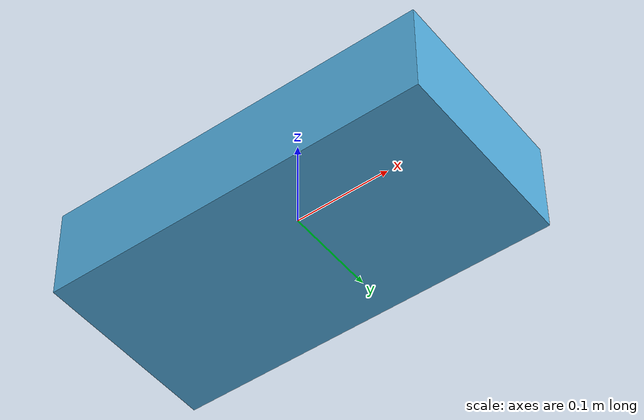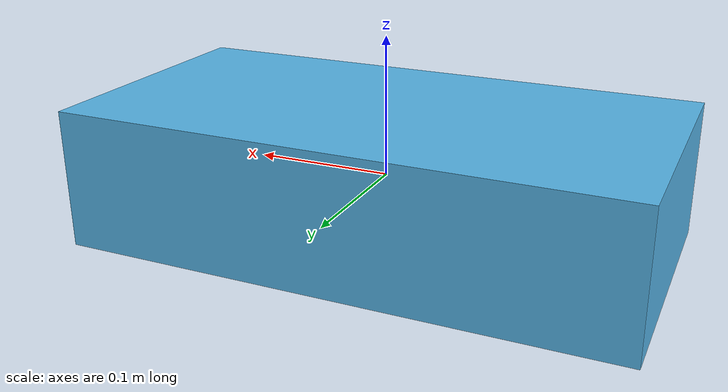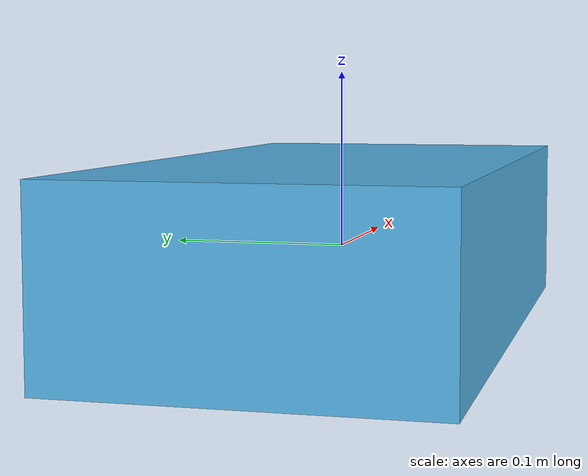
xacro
<?xml version='1.0'?>

<robot name="my_robot" xmlns:xacro="http://www.ros.org/wiki/xacro">

  <link name="robot_footprint"></link>

  <joint name="robot_footprint_joint" type="fixed">
    <origin xyz="0 0 0" rpy="0 0 0" />
    <parent link="robot_footprint"/>
    <child link="chassis" />
  </joint>

  <link name='chassis'>
    <pose>0 0 0.1 0 0 0</pose>

    <inertial>
      <mass value="15.0"/>
      <origin xyz="0.0 0 0" rpy=" 0 0 0"/>
      <inertia
          ixx="0.1" ixy="0" ixz="0"
          iyy="0.1" iyz="0"
          izz="0.1"
      />
    </inertial>

    <collision name='collision'>
      <origin xyz="0 0 0" rpy=" 0 0 0"/>
      <geometry>
        <box size=".4 .2 .1"/>
      </geometry>
    </collision>

    <visual name='chassis_visual'>
      <origin xyz="0 0 0" rpy=" 0 0 0"/>
      <geometry>
        <box size=".4 .2 .1"/>
      </geometry>
    </visual>

  </link>

</robot>
